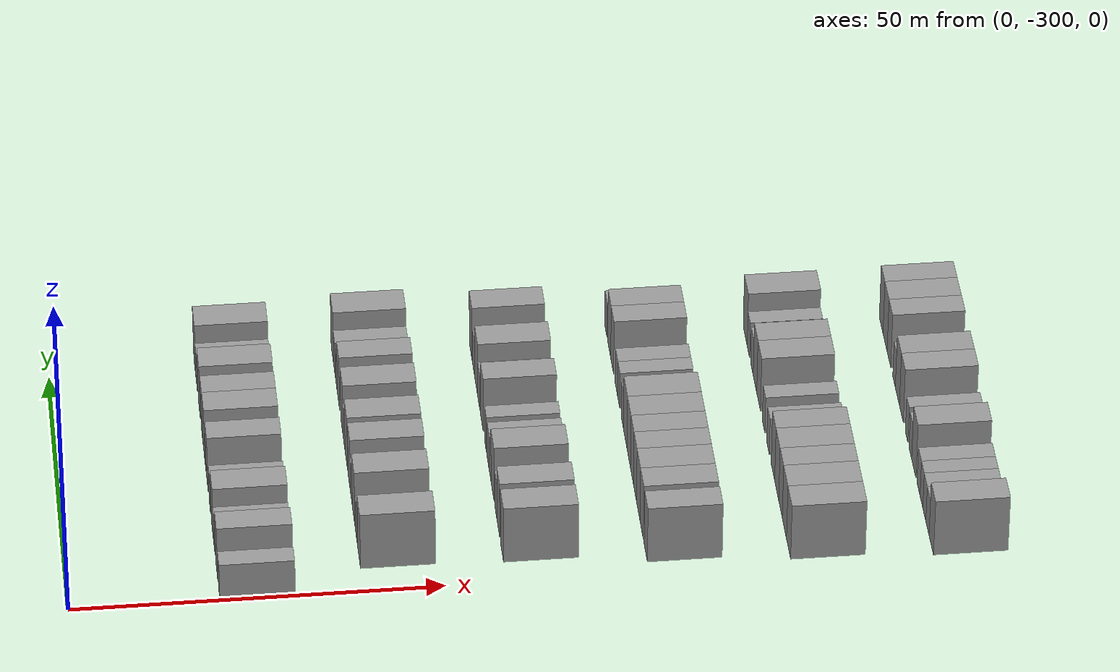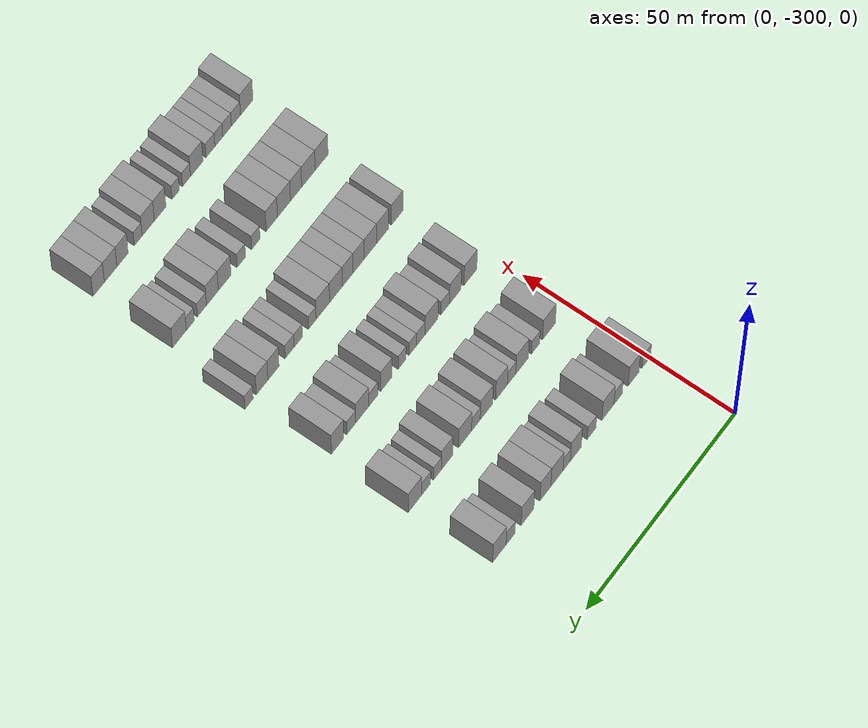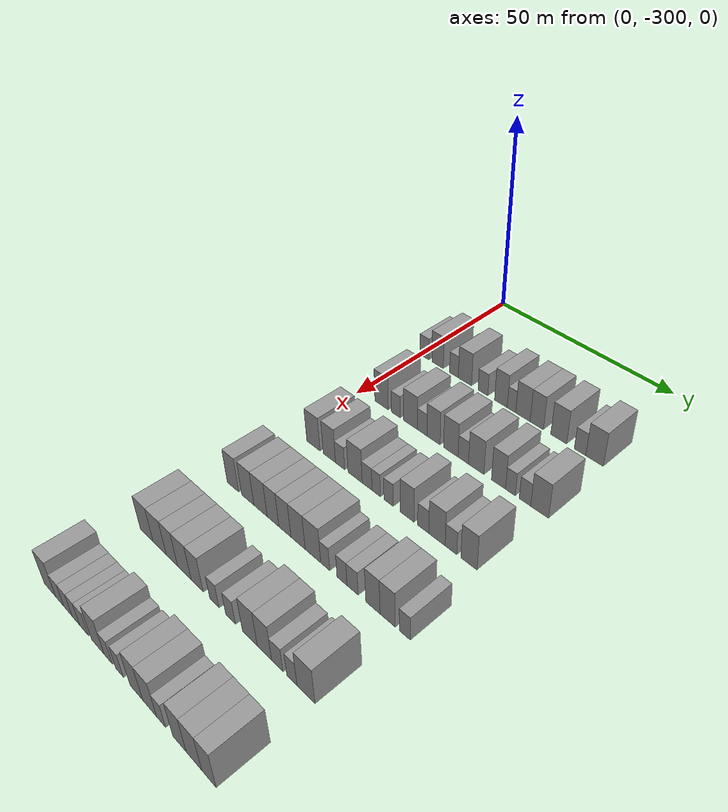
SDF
<sdf version="1.6">
 <world name="default">
  <model name="building_13">
   <static>1</static>
   <pose>25.0000 -298.6594 0 0.000000 0.000000 0.000000</pose>
   <link name="link">
    <pose>0 0 3.00 0 0 0</pose>
    <collision name="collision"><geometry><box><size>10.0000 2.9223 6.0000</size></box></geometry></collision>
    <visual name="visual">
     <cast_shadows>0</cast_shadows>
     <geometry><box><size>10.0000 2.9223 6.0000</size></box></geometry>
     <material>
      <script>
       <uri>model://grey_wall/materials/scripts</uri>
       <uri>model://grey_wall/materials/textures</uri>
       <name>vrc/grey_wall</name>
      </script>
     </material>
    </visual>
   </link>
  </model>
  <model name="building_14">
   <static>1</static>
   <pose>25.0000 -294.3800 0 0.000000 0.000000 0.000000</pose>
   <link name="link">
    <pose>0 0 4.50 0 0 0</pose>
    <collision name="collision"><geometry><box><size>10.0000 3.6365 9.0000</size></box></geometry></collision>
    <visual name="visual">
     <cast_shadows>0</cast_shadows>
     <geometry><box><size>10.0000 3.6365 9.0000</size></box></geometry>
     <material>
      <script>
       <uri>model://grey_wall/materials/scripts</uri>
       <uri>model://grey_wall/materials/textures</uri>
       <name>vrc/grey_wall</name>
      </script>
     </material>
    </visual>
   </link>
  </model>
  <model name="building_15">
   <static>1</static>
   <pose>25.0000 -289.1877 0 0.000000 0.000000 0.000000</pose>
   <link name="link">
    <pose>0 0 3.00 0 0 0</pose>
    <collision name="collision"><geometry><box><size>10.0000 2.7483 6.0000</size></box></geometry></collision>
    <visual name="visual">
     <cast_shadows>0</cast_shadows>
     <geometry><box><size>10.0000 2.7483 6.0000</size></box></geometry>
     <material>
      <script>
       <uri>model://grey_wall/materials/scripts</uri>
       <uri>model://grey_wall/materials/textures</uri>
       <name>vrc/grey_wall</name>
      </script>
     </material>
    </visual>
   </link>
  </model>
  <model name="building_16">
   <static>1</static>
   <pose>25.0000 -285.7804 0 0.000000 0.000000 0.000000</pose>
   <link name="link">
    <pose>0 0 4.50 0 0 0</pose>
    <collision name="collision"><geometry><box><size>10.0000 4.0662 9.0000</size></box></geometry></collision>
    <visual name="visual">
     <cast_shadows>0</cast_shadows>
     <geometry><box><size>10.0000 4.0662 9.0000</size></box></geometry>
     <material>
      <script>
       <uri>model://grey_wall/materials/scripts</uri>
       <uri>model://grey_wall/materials/textures</uri>
       <name>vrc/grey_wall</name>
      </script>
     </material>
    </visual>
   </link>
  </model>
  <model name="building_17">
   <static>1</static>
   <pose>25.0000 -280.2999 0 0.000000 0.000000 0.000000</pose>
   <link name="link">
    <pose>0 0 3.00 0 0 0</pose>
    <collision name="collision"><geometry><box><size>10.0000 2.8947 6.0000</size></box></geometry></collision>
    <visual name="visual">
     <cast_shadows>0</cast_shadows>
     <geometry><box><size>10.0000 2.8947 6.0000</size></box></geometry>
     <material>
      <script>
       <uri>model://grey_wall/materials/scripts</uri>
       <uri>model://grey_wall/materials/textures</uri>
       <name>vrc/grey_wall</name>
      </script>
     </material>
    </visual>
   </link>
  </model>
  <model name="building_18">
   <static>1</static>
   <pose>25.0000 -275.0192 0 0.000000 0.000000 0.000000</pose>
   <link name="link">
    <pose>0 0 4.50 0 0 0</pose>
    <collision name="collision"><geometry><box><size>10.0000 3.6667 9.0000</size></box></geometry></collision>
    <visual name="visual">
     <cast_shadows>0</cast_shadows>
     <geometry><box><size>10.0000 3.6667 9.0000</size></box></geometry>
     <material>
      <script>
       <uri>model://grey_wall/materials/scripts</uri>
       <uri>model://grey_wall/materials/textures</uri>
       <name>vrc/grey_wall</name>
      </script>
     </material>
    </visual>
   </link>
  </model>
  <model name="building_19">
   <static>1</static>
   <pose>25.0000 -271.9733 0 0.000000 0.000000 0.000000</pose>
   <link name="link">
    <pose>0 0 3.00 0 0 0</pose>
    <collision name="collision"><geometry><box><size>10.0000 2.4252 6.0000</size></box></geometry></collision>
    <visual name="visual">
     <cast_shadows>0</cast_shadows>
     <geometry><box><size>10.0000 2.4252 6.0000</size></box></geometry>
     <material>
      <script>
       <uri>model://grey_wall/materials/scripts</uri>
       <uri>model://grey_wall/materials/textures</uri>
       <name>vrc/grey_wall</name>
      </script>
     </material>
    </visual>
   </link>
  </model>
  <model name="building_20">
   <static>1</static>
   <pose>25.0000 -268.7436 0 0.000000 0.000000 0.000000</pose>
   <link name="link">
    <pose>0 0 4.50 0 0 0</pose>
    <collision name="collision"><geometry><box><size>10.0000 4.0341 9.0000</size></box></geometry></collision>
    <visual name="visual">
     <cast_shadows>0</cast_shadows>
     <geometry><box><size>10.0000 4.0341 9.0000</size></box></geometry>
     <material>
      <script>
       <uri>model://grey_wall/materials/scripts</uri>
       <uri>model://grey_wall/materials/textures</uri>
       <name>vrc/grey_wall</name>
      </script>
     </material>
    </visual>
   </link>
  </model>
  <model name="building_21">
   <static>1</static>
   <pose>25.0000 -264.9043 0 0.000000 0.000000 0.000000</pose>
   <link name="link">
    <pose>0 0 4.50 0 0 0</pose>
    <collision name="collision"><geometry><box><size>10.0000 3.6446 9.0000</size></box></geometry></collision>
    <visual name="visual">
     <cast_shadows>0</cast_shadows>
     <geometry><box><size>10.0000 3.6446 9.0000</size></box></geometry>
     <material>
      <script>
       <uri>model://grey_wall/materials/scripts</uri>
       <uri>model://grey_wall/materials/textures</uri>
       <name>vrc/grey_wall</name>
      </script>
     </material>
    </visual>
   </link>
  </model>
  <model name="building_22">
   <static>1</static>
   <pose>25.0000 -258.9772 0 0.000000 0.000000 0.000000</pose>
   <link name="link">
    <pose>0 0 4.50 0 0 0</pose>
    <collision name="collision"><geometry><box><size>10.0000 4.2097 9.0000</size></box></geometry></collision>
    <visual name="visual">
     <cast_shadows>0</cast_shadows>
     <geometry><box><size>10.0000 4.2097 9.0000</size></box></geometry>
     <material>
      <script>
       <uri>model://grey_wall/materials/scripts</uri>
       <uri>model://grey_wall/materials/textures</uri>
       <name>vrc/grey_wall</name>
      </script>
     </material>
    </visual>
   </link>
  </model>
  <model name="building_23">
   <static>1</static>
   <pose>25.0000 -253.3896 0 0.000000 0.000000 0.000000</pose>
   <link name="link">
    <pose>0 0 3.00 0 0 0</pose>
    <collision name="collision"><geometry><box><size>10.0000 2.9653 6.0000</size></box></geometry></collision>
    <visual name="visual">
     <cast_shadows>0</cast_shadows>
     <geometry><box><size>10.0000 2.9653 6.0000</size></box></geometry>
     <material>
      <script>
       <uri>model://grey_wall/materials/scripts</uri>
       <uri>model://grey_wall/materials/textures</uri>
       <name>vrc/grey_wall</name>
      </script>
     </material>
    </visual>
   </link>
  </model>
  <model name="building_24">
   <static>1</static>
   <pose>25.0000 -249.6999 0 0.000000 0.000000 0.000000</pose>
   <link name="link">
    <pose>0 0 4.50 0 0 0</pose>
    <collision name="collision"><geometry><box><size>10.0000 4.4142 9.0000</size></box></geometry></collision>
    <visual name="visual">
     <cast_shadows>0</cast_shadows>
     <geometry><box><size>10.0000 4.4142 9.0000</size></box></geometry>
     <material>
      <script>
       <uri>model://grey_wall/materials/scripts</uri>
       <uri>model://grey_wall/materials/textures</uri>
       <name>vrc/grey_wall</name>
      </script>
     </material>
    </visual>
   </link>
  </model>
  <model name="building_184">
   <static>1</static>
   <pose>44.0000 -293.1045 0 0.000000 0.000000 0.000000</pose>
   <link name="link">
    <pose>0 0 4.50 0 0 0</pose>
    <collision name="collision"><geometry><box><size>10.0000 4.2865 9.0000</size></box></geometry></collision>
    <visual name="visual">
     <cast_shadows>0</cast_shadows>
     <geometry><box><size>10.0000 4.2865 9.0000</size></box></geometry>
     <material>
      <script>
       <uri>model://grey_wall/materials/scripts</uri>
       <uri>model://grey_wall/materials/textures</uri>
       <name>vrc/grey_wall</name>
      </script>
     </material>
    </visual>
   </link>
  </model>
  <model name="building_185">
   <static>1</static>
   <pose>44.0000 -288.5981 0 0.000000 0.000000 0.000000</pose>
   <link name="link">
    <pose>0 0 3.00 0 0 0</pose>
    <collision name="collision"><geometry><box><size>10.0000 2.7263 6.0000</size></box></geometry></collision>
    <visual name="visual">
     <cast_shadows>0</cast_shadows>
     <geometry><box><size>10.0000 2.7263 6.0000</size></box></geometry>
     <material>
      <script>
       <uri>model://grey_wall/materials/scripts</uri>
       <uri>model://grey_wall/materials/textures</uri>
       <name>vrc/grey_wall</name>
      </script>
     </material>
    </visual>
   </link>
  </model>
  <model name="building_186">
   <static>1</static>
   <pose>44.0000 -284.1178 0 0.000000 0.000000 0.000000</pose>
   <link name="link">
    <pose>0 0 4.50 0 0 0</pose>
    <collision name="collision"><geometry><box><size>10.0000 4.2342 9.0000</size></box></geometry></collision>
    <visual name="visual">
     <cast_shadows>0</cast_shadows>
     <geometry><box><size>10.0000 4.2342 9.0000</size></box></geometry>
     <material>
      <script>
       <uri>model://grey_wall/materials/scripts</uri>
       <uri>model://grey_wall/materials/textures</uri>
       <name>vrc/grey_wall</name>
      </script>
     </material>
    </visual>
   </link>
  </model>
  <model name="building_187">
   <static>1</static>
   <pose>44.0000 -280.5986 0 0.000000 0.000000 0.000000</pose>
   <link name="link">
    <pose>0 0 3.00 0 0 0</pose>
    <collision name="collision"><geometry><box><size>10.0000 2.8042 6.0000</size></box></geometry></collision>
    <visual name="visual">
     <cast_shadows>0</cast_shadows>
     <geometry><box><size>10.0000 2.8042 6.0000</size></box></geometry>
     <material>
      <script>
       <uri>model://grey_wall/materials/scripts</uri>
       <uri>model://grey_wall/materials/textures</uri>
       <name>vrc/grey_wall</name>
      </script>
     </material>
    </visual>
   </link>
  </model>
  <model name="building_188">
   <static>1</static>
   <pose>44.0000 -277.2508 0 0.000000 0.000000 0.000000</pose>
   <link name="link">
    <pose>0 0 4.50 0 0 0</pose>
    <collision name="collision"><geometry><box><size>10.0000 3.8915 9.0000</size></box></geometry></collision>
    <visual name="visual">
     <cast_shadows>0</cast_shadows>
     <geometry><box><size>10.0000 3.8915 9.0000</size></box></geometry>
     <material>
      <script>
       <uri>model://grey_wall/materials/scripts</uri>
       <uri>model://grey_wall/materials/textures</uri>
       <name>vrc/grey_wall</name>
      </script>
     </material>
    </visual>
   </link>
  </model>
  <model name="building_189">
   <static>1</static>
   <pose>44.0000 -272.2369 0 0.000000 0.000000 0.000000</pose>
   <link name="link">
    <pose>0 0 4.50 0 0 0</pose>
    <collision name="collision"><geometry><box><size>10.0000 4.1362 9.0000</size></box></geometry></collision>
    <visual name="visual">
     <cast_shadows>0</cast_shadows>
     <geometry><box><size>10.0000 4.1362 9.0000</size></box></geometry>
     <material>
      <script>
       <uri>model://grey_wall/materials/scripts</uri>
       <uri>model://grey_wall/materials/textures</uri>
       <name>vrc/grey_wall</name>
      </script>
     </material>
    </visual>
   </link>
  </model>
  <model name="building_190">
   <static>1</static>
   <pose>44.0000 -268.7240 0 0.000000 0.000000 0.000000</pose>
   <link name="link">
    <pose>0 0 3.00 0 0 0</pose>
    <collision name="collision"><geometry><box><size>10.0000 2.8894 6.0000</size></box></geometry></collision>
    <visual name="visual">
     <cast_shadows>0</cast_shadows>
     <geometry><box><size>10.0000 2.8894 6.0000</size></box></geometry>
     <material>
      <script>
       <uri>model://grey_wall/materials/scripts</uri>
       <uri>model://grey_wall/materials/textures</uri>
       <name>vrc/grey_wall</name>
      </script>
     </material>
    </visual>
   </link>
  </model>
  <model name="building_191">
   <static>1</static>
   <pose>44.0000 -265.1579 0 0.000000 0.000000 0.000000</pose>
   <link name="link">
    <pose>0 0 4.50 0 0 0</pose>
    <collision name="collision"><geometry><box><size>10.0000 4.2429 9.0000</size></box></geometry></collision>
    <visual name="visual">
     <cast_shadows>0</cast_shadows>
     <geometry><box><size>10.0000 4.2429 9.0000</size></box></geometry>
     <material>
      <script>
       <uri>model://grey_wall/materials/scripts</uri>
       <uri>model://grey_wall/materials/textures</uri>
       <name>vrc/grey_wall</name>
      </script>
     </material>
    </visual>
   </link>
  </model>
  <model name="building_192">
   <static>1</static>
   <pose>44.0000 -259.1877 0 0.000000 0.000000 0.000000</pose>
   <link name="link">
    <pose>0 0 4.50 0 0 0</pose>
    <collision name="collision"><geometry><box><size>10.0000 3.6976 9.0000</size></box></geometry></collision>
    <visual name="visual">
     <cast_shadows>0</cast_shadows>
     <geometry><box><size>10.0000 3.6976 9.0000</size></box></geometry>
     <material>
      <script>
       <uri>model://grey_wall/materials/scripts</uri>
       <uri>model://grey_wall/materials/textures</uri>
       <name>vrc/grey_wall</name>
      </script>
     </material>
    </visual>
   </link>
  </model>
  <model name="building_193">
   <static>1</static>
   <pose>44.0000 -256.0679 0 0.000000 0.000000 0.000000</pose>
   <link name="link">
    <pose>0 0 3.00 0 0 0</pose>
    <collision name="collision"><geometry><box><size>10.0000 2.5419 6.0000</size></box></geometry></collision>
    <visual name="visual">
     <cast_shadows>0</cast_shadows>
     <geometry><box><size>10.0000 2.5419 6.0000</size></box></geometry>
     <material>
      <script>
       <uri>model://grey_wall/materials/scripts</uri>
       <uri>model://grey_wall/materials/textures</uri>
       <name>vrc/grey_wall</name>
      </script>
     </material>
    </visual>
   </link>
  </model>
  <model name="building_194">
   <static>1</static>
   <pose>44.0000 -252.3451 0 0.000000 0.000000 0.000000</pose>
   <link name="link">
    <pose>0 0 3.00 0 0 0</pose>
    <collision name="collision"><geometry><box><size>10.0000 2.9038 6.0000</size></box></geometry></collision>
    <visual name="visual">
     <cast_shadows>0</cast_shadows>
     <geometry><box><size>10.0000 2.9038 6.0000</size></box></geometry>
     <material>
      <script>
       <uri>model://grey_wall/materials/scripts</uri>
       <uri>model://grey_wall/materials/textures</uri>
       <name>vrc/grey_wall</name>
      </script>
     </material>
    </visual>
   </link>
  </model>
  <model name="building_195">
   <static>1</static>
   <pose>44.0000 -248.6889 0 0.000000 0.000000 0.000000</pose>
   <link name="link">
    <pose>0 0 4.50 0 0 0</pose>
    <collision name="collision"><geometry><box><size>10.0000 4.4085 9.0000</size></box></geometry></collision>
    <visual name="visual">
     <cast_shadows>0</cast_shadows>
     <geometry><box><size>10.0000 4.4085 9.0000</size></box></geometry>
     <material>
      <script>
       <uri>model://grey_wall/materials/scripts</uri>
       <uri>model://grey_wall/materials/textures</uri>
       <name>vrc/grey_wall</name>
      </script>
     </material>
    </visual>
   </link>
  </model>
  <model name="building_355">
   <static>1</static>
   <pose>63.0000 -293.6515 0 0.000000 0.000000 0.000000</pose>
   <link name="link">
    <pose>0 0 4.50 0 0 0</pose>
    <collision name="collision"><geometry><box><size>10.0000 4.2697 9.0000</size></box></geometry></collision>
    <visual name="visual">
     <cast_shadows>0</cast_shadows>
     <geometry><box><size>10.0000 4.2697 9.0000</size></box></geometry>
     <material>
      <script>
       <uri>model://grey_wall/materials/scripts</uri>
       <uri>model://grey_wall/materials/textures</uri>
       <name>vrc/grey_wall</name>
      </script>
     </material>
    </visual>
   </link>
  </model>
  <model name="building_356">
   <static>1</static>
   <pose>63.0000 -288.5911 0 0.000000 0.000000 0.000000</pose>
   <link name="link">
    <pose>0 0 4.50 0 0 0</pose>
    <collision name="collision"><geometry><box><size>10.0000 3.8511 9.0000</size></box></geometry></collision>
    <visual name="visual">
     <cast_shadows>0</cast_shadows>
     <geometry><box><size>10.0000 3.8511 9.0000</size></box></geometry>
     <material>
      <script>
       <uri>model://grey_wall/materials/scripts</uri>
       <uri>model://grey_wall/materials/textures</uri>
       <name>vrc/grey_wall</name>
      </script>
     </material>
    </visual>
   </link>
  </model>
  <model name="building_357">
   <static>1</static>
   <pose>63.0000 -285.2332 0 0.000000 0.000000 0.000000</pose>
   <link name="link">
    <pose>0 0 3.00 0 0 0</pose>
    <collision name="collision"><geometry><box><size>10.0000 2.8649 6.0000</size></box></geometry></collision>
    <visual name="visual">
     <cast_shadows>0</cast_shadows>
     <geometry><box><size>10.0000 2.8649 6.0000</size></box></geometry>
     <material>
      <script>
       <uri>model://grey_wall/materials/scripts</uri>
       <uri>model://grey_wall/materials/textures</uri>
       <name>vrc/grey_wall</name>
      </script>
     </material>
    </visual>
   </link>
  </model>
  <model name="building_358">
   <static>1</static>
   <pose>63.0000 -280.6775 0 0.000000 0.000000 0.000000</pose>
   <link name="link">
    <pose>0 0 4.50 0 0 0</pose>
    <collision name="collision"><geometry><box><size>10.0000 4.2465 9.0000</size></box></geometry></collision>
    <visual name="visual">
     <cast_shadows>0</cast_shadows>
     <geometry><box><size>10.0000 4.2465 9.0000</size></box></geometry>
     <material>
      <script>
       <uri>model://grey_wall/materials/scripts</uri>
       <uri>model://grey_wall/materials/textures</uri>
       <name>vrc/grey_wall</name>
      </script>
     </material>
    </visual>
   </link>
  </model>
  <model name="building_359">
   <static>1</static>
   <pose>63.0000 -277.1129 0 0.000000 0.000000 0.000000</pose>
   <link name="link">
    <pose>0 0 3.00 0 0 0</pose>
    <collision name="collision"><geometry><box><size>10.0000 2.8826 6.0000</size></box></geometry></collision>
    <visual name="visual">
     <cast_shadows>0</cast_shadows>
     <geometry><box><size>10.0000 2.8826 6.0000</size></box></geometry>
     <material>
      <script>
       <uri>model://grey_wall/materials/scripts</uri>
       <uri>model://grey_wall/materials/textures</uri>
       <name>vrc/grey_wall</name>
      </script>
     </material>
    </visual>
   </link>
  </model>
  <model name="building_360">
   <static>1</static>
   <pose>63.0000 -274.4585 0 0.000000 0.000000 0.000000</pose>
   <link name="link">
    <pose>0 0 3.00 0 0 0</pose>
    <collision name="collision"><geometry><box><size>10.0000 2.4262 6.0000</size></box></geometry></collision>
    <visual name="visual">
     <cast_shadows>0</cast_shadows>
     <geometry><box><size>10.0000 2.4262 6.0000</size></box></geometry>
     <material>
      <script>
       <uri>model://grey_wall/materials/scripts</uri>
       <uri>model://grey_wall/materials/textures</uri>
       <name>vrc/grey_wall</name>
      </script>
     </material>
    </visual>
   </link>
  </model>
  <model name="building_361">
   <static>1</static>
   <pose>63.0000 -270.9408 0 0.000000 0.000000 0.000000</pose>
   <link name="link">
    <pose>0 0 3.00 0 0 0</pose>
    <collision name="collision"><geometry><box><size>10.0000 2.6093 6.0000</size></box></geometry></collision>
    <visual name="visual">
     <cast_shadows>0</cast_shadows>
     <geometry><box><size>10.0000 2.6093 6.0000</size></box></geometry>
     <material>
      <script>
       <uri>model://grey_wall/materials/scripts</uri>
       <uri>model://grey_wall/materials/textures</uri>
       <name>vrc/grey_wall</name>
      </script>
     </material>
    </visual>
   </link>
  </model>
  <model name="building_362">
   <static>1</static>
   <pose>63.0000 -265.7707 0 0.000000 0.000000 0.000000</pose>
   <link name="link">
    <pose>0 0 4.50 0 0 0</pose>
    <collision name="collision"><geometry><box><size>10.0000 3.7309 9.0000</size></box></geometry></collision>
    <visual name="visual">
     <cast_shadows>0</cast_shadows>
     <geometry><box><size>10.0000 3.7309 9.0000</size></box></geometry>
     <material>
      <script>
       <uri>model://grey_wall/materials/scripts</uri>
       <uri>model://grey_wall/materials/textures</uri>
       <name>vrc/grey_wall</name>
      </script>
     </material>
    </visual>
   </link>
  </model>
  <model name="building_363">
   <static>1</static>
   <pose>63.0000 -261.4186 0 0.000000 0.000000 0.000000</pose>
   <link name="link">
    <pose>0 0 3.00 0 0 0</pose>
    <collision name="collision"><geometry><box><size>10.0000 2.9733 6.0000</size></box></geometry></collision>
    <visual name="visual">
     <cast_shadows>0</cast_shadows>
     <geometry><box><size>10.0000 2.9733 6.0000</size></box></geometry>
     <material>
      <script>
       <uri>model://grey_wall/materials/scripts</uri>
       <uri>model://grey_wall/materials/textures</uri>
       <name>vrc/grey_wall</name>
      </script>
     </material>
    </visual>
   </link>
  </model>
  <model name="building_364">
   <static>1</static>
   <pose>63.0000 -257.8144 0 0.000000 0.000000 0.000000</pose>
   <link name="link">
    <pose>0 0 4.50 0 0 0</pose>
    <collision name="collision"><geometry><box><size>10.0000 4.2352 9.0000</size></box></geometry></collision>
    <visual name="visual">
     <cast_shadows>0</cast_shadows>
     <geometry><box><size>10.0000 4.2352 9.0000</size></box></geometry>
     <material>
      <script>
       <uri>model://grey_wall/materials/scripts</uri>
       <uri>model://grey_wall/materials/textures</uri>
       <name>vrc/grey_wall</name>
      </script>
     </material>
    </visual>
   </link>
  </model>
  <model name="building_365">
   <static>1</static>
   <pose>63.0000 -254.2204 0 0.000000 0.000000 0.000000</pose>
   <link name="link">
    <pose>0 0 3.00 0 0 0</pose>
    <collision name="collision"><geometry><box><size>10.0000 2.9527 6.0000</size></box></geometry></collision>
    <visual name="visual">
     <cast_shadows>0</cast_shadows>
     <geometry><box><size>10.0000 2.9527 6.0000</size></box></geometry>
     <material>
      <script>
       <uri>model://grey_wall/materials/scripts</uri>
       <uri>model://grey_wall/materials/textures</uri>
       <name>vrc/grey_wall</name>
      </script>
     </material>
    </visual>
   </link>
  </model>
  <model name="building_366">
   <static>1</static>
   <pose>63.0000 -249.7431 0 0.000000 0.000000 0.000000</pose>
   <link name="link">
    <pose>0 0 4.50 0 0 0</pose>
    <collision name="collision"><geometry><box><size>10.0000 4.0019 9.0000</size></box></geometry></collision>
    <visual name="visual">
     <cast_shadows>0</cast_shadows>
     <geometry><box><size>10.0000 4.0019 9.0000</size></box></geometry>
     <material>
      <script>
       <uri>model://grey_wall/materials/scripts</uri>
       <uri>model://grey_wall/materials/textures</uri>
       <name>vrc/grey_wall</name>
      </script>
     </material>
    </visual>
   </link>
  </model>
  <model name="building_536">
   <static>1</static>
   <pose>82.0000 -295.7420 0 0.000000 0.000000 0.000000</pose>
   <link name="link">
    <pose>0 0 4.50 0 0 0</pose>
    <collision name="collision"><geometry><box><size>10.0000 3.7934 9.0000</size></box></geometry></collision>
    <visual name="visual">
     <cast_shadows>0</cast_shadows>
     <geometry><box><size>10.0000 3.7934 9.0000</size></box></geometry>
     <material>
      <script>
       <uri>model://grey_wall/materials/scripts</uri>
       <uri>model://grey_wall/materials/textures</uri>
       <name>vrc/grey_wall</name>
      </script>
     </material>
    </visual>
   </link>
  </model>
  <model name="building_537">
   <static>1</static>
   <pose>82.0000 -290.8663 0 0.000000 0.000000 0.000000</pose>
   <link name="link">
    <pose>0 0 4.50 0 0 0</pose>
    <collision name="collision"><geometry><box><size>10.0000 3.9579 9.0000</size></box></geometry></collision>
    <visual name="visual">
     <cast_shadows>0</cast_shadows>
     <geometry><box><size>10.0000 3.9579 9.0000</size></box></geometry>
     <material>
      <script>
       <uri>model://grey_wall/materials/scripts</uri>
       <uri>model://grey_wall/materials/textures</uri>
       <name>vrc/grey_wall</name>
      </script>
     </material>
    </visual>
   </link>
  </model>
  <model name="building_538">
   <static>1</static>
   <pose>82.0000 -286.7878 0 0.000000 0.000000 0.000000</pose>
   <link name="link">
    <pose>0 0 4.50 0 0 0</pose>
    <collision name="collision"><geometry><box><size>10.0000 4.1992 9.0000</size></box></geometry></collision>
    <visual name="visual">
     <cast_shadows>0</cast_shadows>
     <geometry><box><size>10.0000 4.1992 9.0000</size></box></geometry>
     <material>
      <script>
       <uri>model://grey_wall/materials/scripts</uri>
       <uri>model://grey_wall/materials/textures</uri>
       <name>vrc/grey_wall</name>
      </script>
     </material>
    </visual>
   </link>
  </model>
  <model name="building_539">
   <static>1</static>
   <pose>82.0000 -282.8835 0 0.000000 0.000000 0.000000</pose>
   <link name="link">
    <pose>0 0 4.50 0 0 0</pose>
    <collision name="collision"><geometry><box><size>10.0000 3.6094 9.0000</size></box></geometry></collision>
    <visual name="visual">
     <cast_shadows>0</cast_shadows>
     <geometry><box><size>10.0000 3.6094 9.0000</size></box></geometry>
     <material>
      <script>
       <uri>model://grey_wall/materials/scripts</uri>
       <uri>model://grey_wall/materials/textures</uri>
       <name>vrc/grey_wall</name>
      </script>
     </material>
    </visual>
   </link>
  </model>
  <model name="building_540">
   <static>1</static>
   <pose>82.0000 -279.2740 0 0.000000 0.000000 0.000000</pose>
   <link name="link">
    <pose>0 0 4.50 0 0 0</pose>
    <collision name="collision"><geometry><box><size>10.0000 3.6096 9.0000</size></box></geometry></collision>
    <visual name="visual">
     <cast_shadows>0</cast_shadows>
     <geometry><box><size>10.0000 3.6096 9.0000</size></box></geometry>
     <material>
      <script>
       <uri>model://grey_wall/materials/scripts</uri>
       <uri>model://grey_wall/materials/textures</uri>
       <name>vrc/grey_wall</name>
      </script>
     </material>
    </visual>
   </link>
  </model>
  <model name="building_541">
   <static>1</static>
   <pose>82.0000 -275.3848 0 0.000000 0.000000 0.000000</pose>
   <link name="link">
    <pose>0 0 4.50 0 0 0</pose>
    <collision name="collision"><geometry><box><size>10.0000 4.1688 9.0000</size></box></geometry></collision>
    <visual name="visual">
     <cast_shadows>0</cast_shadows>
     <geometry><box><size>10.0000 4.1688 9.0000</size></box></geometry>
     <material>
      <script>
       <uri>model://grey_wall/materials/scripts</uri>
       <uri>model://grey_wall/materials/textures</uri>
       <name>vrc/grey_wall</name>
      </script>
     </material>
    </visual>
   </link>
  </model>
  <model name="building_542">
   <static>1</static>
   <pose>82.0000 -271.0852 0 0.000000 0.000000 0.000000</pose>
   <link name="link">
    <pose>0 0 4.50 0 0 0</pose>
    <collision name="collision"><geometry><box><size>10.0000 4.4304 9.0000</size></box></geometry></collision>
    <visual name="visual">
     <cast_shadows>0</cast_shadows>
     <geometry><box><size>10.0000 4.4304 9.0000</size></box></geometry>
     <material>
      <script>
       <uri>model://grey_wall/materials/scripts</uri>
       <uri>model://grey_wall/materials/textures</uri>
       <name>vrc/grey_wall</name>
      </script>
     </material>
    </visual>
   </link>
  </model>
  <model name="building_543">
   <static>1</static>
   <pose>82.0000 -267.6187 0 0.000000 0.000000 0.000000</pose>
   <link name="link">
    <pose>0 0 3.00 0 0 0</pose>
    <collision name="collision"><geometry><box><size>10.0000 2.5026 6.0000</size></box></geometry></collision>
    <visual name="visual">
     <cast_shadows>0</cast_shadows>
     <geometry><box><size>10.0000 2.5026 6.0000</size></box></geometry>
     <material>
      <script>
       <uri>model://grey_wall/materials/scripts</uri>
       <uri>model://grey_wall/materials/textures</uri>
       <name>vrc/grey_wall</name>
      </script>
     </material>
    </visual>
   </link>
  </model>
  <model name="building_544">
   <static>1</static>
   <pose>82.0000 -263.0231 0 0.000000 0.000000 0.000000</pose>
   <link name="link">
    <pose>0 0 3.00 0 0 0</pose>
    <collision name="collision"><geometry><box><size>10.0000 2.6886 6.0000</size></box></geometry></collision>
    <visual name="visual">
     <cast_shadows>0</cast_shadows>
     <geometry><box><size>10.0000 2.6886 6.0000</size></box></geometry>
     <material>
      <script>
       <uri>model://grey_wall/materials/scripts</uri>
       <uri>model://grey_wall/materials/textures</uri>
       <name>vrc/grey_wall</name>
      </script>
     </material>
    </visual>
   </link>
  </model>
  <model name="building_545">
   <static>1</static>
   <pose>82.0000 -260.1972 0 0.000000 0.000000 0.000000</pose>
   <link name="link">
    <pose>0 0 3.00 0 0 0</pose>
    <collision name="collision"><geometry><box><size>10.0000 2.9632 6.0000</size></box></geometry></collision>
    <visual name="visual">
     <cast_shadows>0</cast_shadows>
     <geometry><box><size>10.0000 2.9632 6.0000</size></box></geometry>
     <material>
      <script>
       <uri>model://grey_wall/materials/scripts</uri>
       <uri>model://grey_wall/materials/textures</uri>
       <name>vrc/grey_wall</name>
      </script>
     </material>
    </visual>
   </link>
  </model>
  <model name="building_546">
   <static>1</static>
   <pose>82.0000 -254.9022 0 0.000000 0.000000 0.000000</pose>
   <link name="link">
    <pose>0 0 4.50 0 0 0</pose>
    <collision name="collision"><geometry><box><size>10.0000 3.6268 9.0000</size></box></geometry></collision>
    <visual name="visual">
     <cast_shadows>0</cast_shadows>
     <geometry><box><size>10.0000 3.6268 9.0000</size></box></geometry>
     <material>
      <script>
       <uri>model://grey_wall/materials/scripts</uri>
       <uri>model://grey_wall/materials/textures</uri>
       <name>vrc/grey_wall</name>
      </script>
     </material>
    </visual>
   </link>
  </model>
  <model name="building_547">
   <static>1</static>
   <pose>82.0000 -251.1953 0 0.000000 0.000000 0.000000</pose>
   <link name="link">
    <pose>0 0 4.50 0 0 0</pose>
    <collision name="collision"><geometry><box><size>10.0000 3.7869 9.0000</size></box></geometry></collision>
    <visual name="visual">
     <cast_shadows>0</cast_shadows>
     <geometry><box><size>10.0000 3.7869 9.0000</size></box></geometry>
     <material>
      <script>
       <uri>model://grey_wall/materials/scripts</uri>
       <uri>model://grey_wall/materials/textures</uri>
       <name>vrc/grey_wall</name>
      </script>
     </material>
    </visual>
   </link>
  </model>
  <model name="building_548">
   <static>1</static>
   <pose>82.0000 -246.9693 0 0.000000 0.000000 0.000000</pose>
   <link name="link">
    <pose>0 0 3.00 0 0 0</pose>
    <collision name="collision"><geometry><box><size>10.0000 2.6651 6.0000</size></box></geometry></collision>
    <visual name="visual">
     <cast_shadows>0</cast_shadows>
     <geometry><box><size>10.0000 2.6651 6.0000</size></box></geometry>
     <material>
      <script>
       <uri>model://grey_wall/materials/scripts</uri>
       <uri>model://grey_wall/materials/textures</uri>
       <name>vrc/grey_wall</name>
      </script>
     </material>
    </visual>
   </link>
  </model>
  <model name="building_708">
   <static>1</static>
   <pose>101.0000 -296.8015 0 0.000000 0.000000 0.000000</pose>
   <link name="link">
    <pose>0 0 4.50 0 0 0</pose>
    <collision name="collision"><geometry><box><size>10.0000 4.3329 9.0000</size></box></geometry></collision>
    <visual name="visual">
     <cast_shadows>0</cast_shadows>
     <geometry><box><size>10.0000 4.3329 9.0000</size></box></geometry>
     <material>
      <script>
       <uri>model://grey_wall/materials/scripts</uri>
       <uri>model://grey_wall/materials/textures</uri>
       <name>vrc/grey_wall</name>
      </script>
     </material>
    </visual>
   </link>
  </model>
  <model name="building_709">
   <static>1</static>
   <pose>101.0000 -292.4182 0 0.000000 0.000000 0.000000</pose>
   <link name="link">
    <pose>0 0 4.50 0 0 0</pose>
    <collision name="collision"><geometry><box><size>10.0000 4.4336 9.0000</size></box></geometry></collision>
    <visual name="visual">
     <cast_shadows>0</cast_shadows>
     <geometry><box><size>10.0000 4.4336 9.0000</size></box></geometry>
     <material>
      <script>
       <uri>model://grey_wall/materials/scripts</uri>
       <uri>model://grey_wall/materials/textures</uri>
       <name>vrc/grey_wall</name>
      </script>
     </material>
    </visual>
   </link>
  </model>
  <model name="building_710">
   <static>1</static>
   <pose>101.0000 -288.3326 0 0.000000 0.000000 0.000000</pose>
   <link name="link">
    <pose>0 0 4.50 0 0 0</pose>
    <collision name="collision"><geometry><box><size>10.0000 3.7374 9.0000</size></box></geometry></collision>
    <visual name="visual">
     <cast_shadows>0</cast_shadows>
     <geometry><box><size>10.0000 3.7374 9.0000</size></box></geometry>
     <material>
      <script>
       <uri>model://grey_wall/materials/scripts</uri>
       <uri>model://grey_wall/materials/textures</uri>
       <name>vrc/grey_wall</name>
      </script>
     </material>
    </visual>
   </link>
  </model>
  <model name="building_711">
   <static>1</static>
   <pose>101.0000 -284.3201 0 0.000000 0.000000 0.000000</pose>
   <link name="link">
    <pose>0 0 4.50 0 0 0</pose>
    <collision name="collision"><geometry><box><size>10.0000 4.2876 9.0000</size></box></geometry></collision>
    <visual name="visual">
     <cast_shadows>0</cast_shadows>
     <geometry><box><size>10.0000 4.2876 9.0000</size></box></geometry>
     <material>
      <script>
       <uri>model://grey_wall/materials/scripts</uri>
       <uri>model://grey_wall/materials/textures</uri>
       <name>vrc/grey_wall</name>
      </script>
     </material>
    </visual>
   </link>
  </model>
  <model name="building_712">
   <static>1</static>
   <pose>101.0000 -280.3068 0 0.000000 0.000000 0.000000</pose>
   <link name="link">
    <pose>0 0 4.50 0 0 0</pose>
    <collision name="collision"><geometry><box><size>10.0000 3.7390 9.0000</size></box></geometry></collision>
    <visual name="visual">
     <cast_shadows>0</cast_shadows>
     <geometry><box><size>10.0000 3.7390 9.0000</size></box></geometry>
     <material>
      <script>
       <uri>model://grey_wall/materials/scripts</uri>
       <uri>model://grey_wall/materials/textures</uri>
       <name>vrc/grey_wall</name>
      </script>
     </material>
    </visual>
   </link>
  </model>
  <model name="building_713">
   <static>1</static>
   <pose>101.0000 -275.0623 0 0.000000 0.000000 0.000000</pose>
   <link name="link">
    <pose>0 0 3.00 0 0 0</pose>
    <collision name="collision"><geometry><box><size>10.0000 2.7501 6.0000</size></box></geometry></collision>
    <visual name="visual">
     <cast_shadows>0</cast_shadows>
     <geometry><box><size>10.0000 2.7501 6.0000</size></box></geometry>
     <material>
      <script>
       <uri>model://grey_wall/materials/scripts</uri>
       <uri>model://grey_wall/materials/textures</uri>
       <name>vrc/grey_wall</name>
      </script>
     </material>
    </visual>
   </link>
  </model>
  <model name="building_714">
   <static>1</static>
   <pose>101.0000 -270.2967 0 0.000000 0.000000 0.000000</pose>
   <link name="link">
    <pose>0 0 3.00 0 0 0</pose>
    <collision name="collision"><geometry><box><size>10.0000 2.7811 6.0000</size></box></geometry></collision>
    <visual name="visual">
     <cast_shadows>0</cast_shadows>
     <geometry><box><size>10.0000 2.7811 6.0000</size></box></geometry>
     <material>
      <script>
       <uri>model://grey_wall/materials/scripts</uri>
       <uri>model://grey_wall/materials/textures</uri>
       <name>vrc/grey_wall</name>
      </script>
     </material>
    </visual>
   </link>
  </model>
  <model name="building_715">
   <static>1</static>
   <pose>101.0000 -264.8441 0 0.000000 0.000000 0.000000</pose>
   <link name="link">
    <pose>0 0 4.50 0 0 0</pose>
    <collision name="collision"><geometry><box><size>10.0000 4.1241 9.0000</size></box></geometry></collision>
    <visual name="visual">
     <cast_shadows>0</cast_shadows>
     <geometry><box><size>10.0000 4.1241 9.0000</size></box></geometry>
     <material>
      <script>
       <uri>model://grey_wall/materials/scripts</uri>
       <uri>model://grey_wall/materials/textures</uri>
       <name>vrc/grey_wall</name>
      </script>
     </material>
    </visual>
   </link>
  </model>
  <model name="building_716">
   <static>1</static>
   <pose>101.0000 -260.8467 0 0.000000 0.000000 0.000000</pose>
   <link name="link">
    <pose>0 0 4.50 0 0 0</pose>
    <collision name="collision"><geometry><box><size>10.0000 3.8706 9.0000</size></box></geometry></collision>
    <visual name="visual">
     <cast_shadows>0</cast_shadows>
     <geometry><box><size>10.0000 3.8706 9.0000</size></box></geometry>
     <material>
      <script>
       <uri>model://grey_wall/materials/scripts</uri>
       <uri>model://grey_wall/materials/textures</uri>
       <name>vrc/grey_wall</name>
      </script>
     </material>
    </visual>
   </link>
  </model>
  <model name="building_717">
   <static>1</static>
   <pose>101.0000 -257.4230 0 0.000000 0.000000 0.000000</pose>
   <link name="link">
    <pose>0 0 3.00 0 0 0</pose>
    <collision name="collision"><geometry><box><size>10.0000 2.9768 6.0000</size></box></geometry></collision>
    <visual name="visual">
     <cast_shadows>0</cast_shadows>
     <geometry><box><size>10.0000 2.9768 6.0000</size></box></geometry>
     <material>
      <script>
       <uri>model://grey_wall/materials/scripts</uri>
       <uri>model://grey_wall/materials/textures</uri>
       <name>vrc/grey_wall</name>
      </script>
     </material>
    </visual>
   </link>
  </model>
  <model name="building_718">
   <static>1</static>
   <pose>101.0000 -253.6212 0 0.000000 0.000000 0.000000</pose>
   <link name="link">
    <pose>0 0 3.00 0 0 0</pose>
    <collision name="collision"><geometry><box><size>10.0000 2.6268 6.0000</size></box></geometry></collision>
    <visual name="visual">
     <cast_shadows>0</cast_shadows>
     <geometry><box><size>10.0000 2.6268 6.0000</size></box></geometry>
     <material>
      <script>
       <uri>model://grey_wall/materials/scripts</uri>
       <uri>model://grey_wall/materials/textures</uri>
       <name>vrc/grey_wall</name>
      </script>
     </material>
    </visual>
   </link>
  </model>
  <model name="building_719">
   <static>1</static>
   <pose>101.0000 -250.0789 0 0.000000 0.000000 0.000000</pose>
   <link name="link">
    <pose>0 0 4.50 0 0 0</pose>
    <collision name="collision"><geometry><box><size>10.0000 4.4578 9.0000</size></box></geometry></collision>
    <visual name="visual">
     <cast_shadows>0</cast_shadows>
     <geometry><box><size>10.0000 4.4578 9.0000</size></box></geometry>
     <material>
      <script>
       <uri>model://grey_wall/materials/scripts</uri>
       <uri>model://grey_wall/materials/textures</uri>
       <name>vrc/grey_wall</name>
      </script>
     </material>
    </visual>
   </link>
  </model>
  <model name="building_882">
   <static>1</static>
   <pose>120.0000 -297.8964 0 0.000000 0.000000 0.000000</pose>
   <link name="link">
    <pose>0 0 4.50 0 0 0</pose>
    <collision name="collision"><geometry><box><size>10.0000 4.1463 9.0000</size></box></geometry></collision>
    <visual name="visual">
     <cast_shadows>0</cast_shadows>
     <geometry><box><size>10.0000 4.1463 9.0000</size></box></geometry>
     <material>
      <script>
       <uri>model://grey_wall/materials/scripts</uri>
       <uri>model://grey_wall/materials/textures</uri>
       <name>vrc/grey_wall</name>
      </script>
     </material>
    </visual>
   </link>
  </model>
  <model name="building_883">
   <static>1</static>
   <pose>120.0000 -294.3263 0 0.000000 0.000000 0.000000</pose>
   <link name="link">
    <pose>0 0 3.00 0 0 0</pose>
    <collision name="collision"><geometry><box><size>10.0000 2.9939 6.0000</size></box></geometry></collision>
    <visual name="visual">
     <cast_shadows>0</cast_shadows>
     <geometry><box><size>10.0000 2.9939 6.0000</size></box></geometry>
     <material>
      <script>
       <uri>model://grey_wall/materials/scripts</uri>
       <uri>model://grey_wall/materials/textures</uri>
       <name>vrc/grey_wall</name>
      </script>
     </material>
    </visual>
   </link>
  </model>
  <model name="building_884">
   <static>1</static>
   <pose>120.0000 -291.3962 0 0.000000 0.000000 0.000000</pose>
   <link name="link">
    <pose>0 0 3.00 0 0 0</pose>
    <collision name="collision"><geometry><box><size>10.0000 2.8663 6.0000</size></box></geometry></collision>
    <visual name="visual">
     <cast_shadows>0</cast_shadows>
     <geometry><box><size>10.0000 2.8663 6.0000</size></box></geometry>
     <material>
      <script>
       <uri>model://grey_wall/materials/scripts</uri>
       <uri>model://grey_wall/materials/textures</uri>
       <name>vrc/grey_wall</name>
      </script>
     </material>
    </visual>
   </link>
  </model>
  <model name="building_885">
   <static>1</static>
   <pose>120.0000 -288.6717 0 0.000000 0.000000 0.000000</pose>
   <link name="link">
    <pose>0 0 3.00 0 0 0</pose>
    <collision name="collision"><geometry><box><size>10.0000 2.5826 6.0000</size></box></geometry></collision>
    <visual name="visual">
     <cast_shadows>0</cast_shadows>
     <geometry><box><size>10.0000 2.5826 6.0000</size></box></geometry>
     <material>
      <script>
       <uri>model://grey_wall/materials/scripts</uri>
       <uri>model://grey_wall/materials/textures</uri>
       <name>vrc/grey_wall</name>
      </script>
     </material>
    </visual>
   </link>
  </model>
  <model name="building_886">
   <static>1</static>
   <pose>120.0000 -285.9162 0 0.000000 0.000000 0.000000</pose>
   <link name="link">
    <pose>0 0 3.00 0 0 0</pose>
    <collision name="collision"><geometry><box><size>10.0000 2.9285 6.0000</size></box></geometry></collision>
    <visual name="visual">
     <cast_shadows>0</cast_shadows>
     <geometry><box><size>10.0000 2.9285 6.0000</size></box></geometry>
     <material>
      <script>
       <uri>model://grey_wall/materials/scripts</uri>
       <uri>model://grey_wall/materials/textures</uri>
       <name>vrc/grey_wall</name>
      </script>
     </material>
    </visual>
   </link>
  </model>
  <model name="building_887">
   <static>1</static>
   <pose>120.0000 -281.4054 0 0.000000 0.000000 0.000000</pose>
   <link name="link">
    <pose>0 0 4.50 0 0 0</pose>
    <collision name="collision"><geometry><box><size>10.0000 4.0931 9.0000</size></box></geometry></collision>
    <visual name="visual">
     <cast_shadows>0</cast_shadows>
     <geometry><box><size>10.0000 4.0931 9.0000</size></box></geometry>
     <material>
      <script>
       <uri>model://grey_wall/materials/scripts</uri>
       <uri>model://grey_wall/materials/textures</uri>
       <name>vrc/grey_wall</name>
      </script>
     </material>
    </visual>
   </link>
  </model>
  <model name="building_888">
   <static>1</static>
   <pose>120.0000 -278.0429 0 0.000000 0.000000 0.000000</pose>
   <link name="link">
    <pose>0 0 3.00 0 0 0</pose>
    <collision name="collision"><geometry><box><size>10.0000 2.6320 6.0000</size></box></geometry></collision>
    <visual name="visual">
     <cast_shadows>0</cast_shadows>
     <geometry><box><size>10.0000 2.6320 6.0000</size></box></geometry>
     <material>
      <script>
       <uri>model://grey_wall/materials/scripts</uri>
       <uri>model://grey_wall/materials/textures</uri>
       <name>vrc/grey_wall</name>
      </script>
     </material>
    </visual>
   </link>
  </model>
  <model name="building_889">
   <static>1</static>
   <pose>120.0000 -274.5210 0 0.000000 0.000000 0.000000</pose>
   <link name="link">
    <pose>0 0 3.00 0 0 0</pose>
    <collision name="collision"><geometry><box><size>10.0000 2.4119 6.0000</size></box></geometry></collision>
    <visual name="visual">
     <cast_shadows>0</cast_shadows>
     <geometry><box><size>10.0000 2.4119 6.0000</size></box></geometry>
     <material>
      <script>
       <uri>model://grey_wall/materials/scripts</uri>
       <uri>model://grey_wall/materials/textures</uri>
       <name>vrc/grey_wall</name>
      </script>
     </material>
    </visual>
   </link>
  </model>
  <model name="building_890">
   <static>1</static>
   <pose>120.0000 -269.4192 0 0.000000 0.000000 0.000000</pose>
   <link name="link">
    <pose>0 0 4.50 0 0 0</pose>
    <collision name="collision"><geometry><box><size>10.0000 3.7917 9.0000</size></box></geometry></collision>
    <visual name="visual">
     <cast_shadows>0</cast_shadows>
     <geometry><box><size>10.0000 3.7917 9.0000</size></box></geometry>
     <material>
      <script>
       <uri>model://grey_wall/materials/scripts</uri>
       <uri>model://grey_wall/materials/textures</uri>
       <name>vrc/grey_wall</name>
      </script>
     </material>
    </visual>
   </link>
  </model>
  <model name="building_891">
   <static>1</static>
   <pose>120.0000 -265.5276 0 0.000000 0.000000 0.000000</pose>
   <link name="link">
    <pose>0 0 4.50 0 0 0</pose>
    <collision name="collision"><geometry><box><size>10.0000 3.9915 9.0000</size></box></geometry></collision>
    <visual name="visual">
     <cast_shadows>0</cast_shadows>
     <geometry><box><size>10.0000 3.9915 9.0000</size></box></geometry>
     <material>
      <script>
       <uri>model://grey_wall/materials/scripts</uri>
       <uri>model://grey_wall/materials/textures</uri>
       <name>vrc/grey_wall</name>
      </script>
     </material>
    </visual>
   </link>
  </model>
  <model name="building_892">
   <static>1</static>
   <pose>120.0000 -262.2655 0 0.000000 0.000000 0.000000</pose>
   <link name="link">
    <pose>0 0 3.00 0 0 0</pose>
    <collision name="collision"><geometry><box><size>10.0000 2.5327 6.0000</size></box></geometry></collision>
    <visual name="visual">
     <cast_shadows>0</cast_shadows>
     <geometry><box><size>10.0000 2.5327 6.0000</size></box></geometry>
     <material>
      <script>
       <uri>model://grey_wall/materials/scripts</uri>
       <uri>model://grey_wall/materials/textures</uri>
       <name>vrc/grey_wall</name>
      </script>
     </material>
    </visual>
   </link>
  </model>
  <model name="building_893">
   <static>1</static>
   <pose>120.0000 -257.1889 0 0.000000 0.000000 0.000000</pose>
   <link name="link">
    <pose>0 0 4.50 0 0 0</pose>
    <collision name="collision"><geometry><box><size>10.0000 3.6207 9.0000</size></box></geometry></collision>
    <visual name="visual">
     <cast_shadows>0</cast_shadows>
     <geometry><box><size>10.0000 3.6207 9.0000</size></box></geometry>
     <material>
      <script>
       <uri>model://grey_wall/materials/scripts</uri>
       <uri>model://grey_wall/materials/textures</uri>
       <name>vrc/grey_wall</name>
      </script>
     </material>
    </visual>
   </link>
  </model>
  <model name="building_894">
   <static>1</static>
   <pose>120.0000 -253.3412 0 0.000000 0.000000 0.000000</pose>
   <link name="link">
    <pose>0 0 4.50 0 0 0</pose>
    <collision name="collision"><geometry><box><size>10.0000 4.0747 9.0000</size></box></geometry></collision>
    <visual name="visual">
     <cast_shadows>0</cast_shadows>
     <geometry><box><size>10.0000 4.0747 9.0000</size></box></geometry>
     <material>
      <script>
       <uri>model://grey_wall/materials/scripts</uri>
       <uri>model://grey_wall/materials/textures</uri>
       <name>vrc/grey_wall</name>
      </script>
     </material>
    </visual>
   </link>
  </model>
  <model name="building_895">
   <static>1</static>
   <pose>120.0000 -249.4750 0 0.000000 0.000000 0.000000</pose>
   <link name="link">
    <pose>0 0 4.50 0 0 0</pose>
    <collision name="collision"><geometry><box><size>10.0000 3.6576 9.0000</size></box></geometry></collision>
    <visual name="visual">
     <cast_shadows>0</cast_shadows>
     <geometry><box><size>10.0000 3.6576 9.0000</size></box></geometry>
     <material>
      <script>
       <uri>model://grey_wall/materials/scripts</uri>
       <uri>model://grey_wall/materials/textures</uri>
       <name>vrc/grey_wall</name>
      </script>
     </material>
    </visual>
   </link>
  </model>
 </world>
</sdf>
